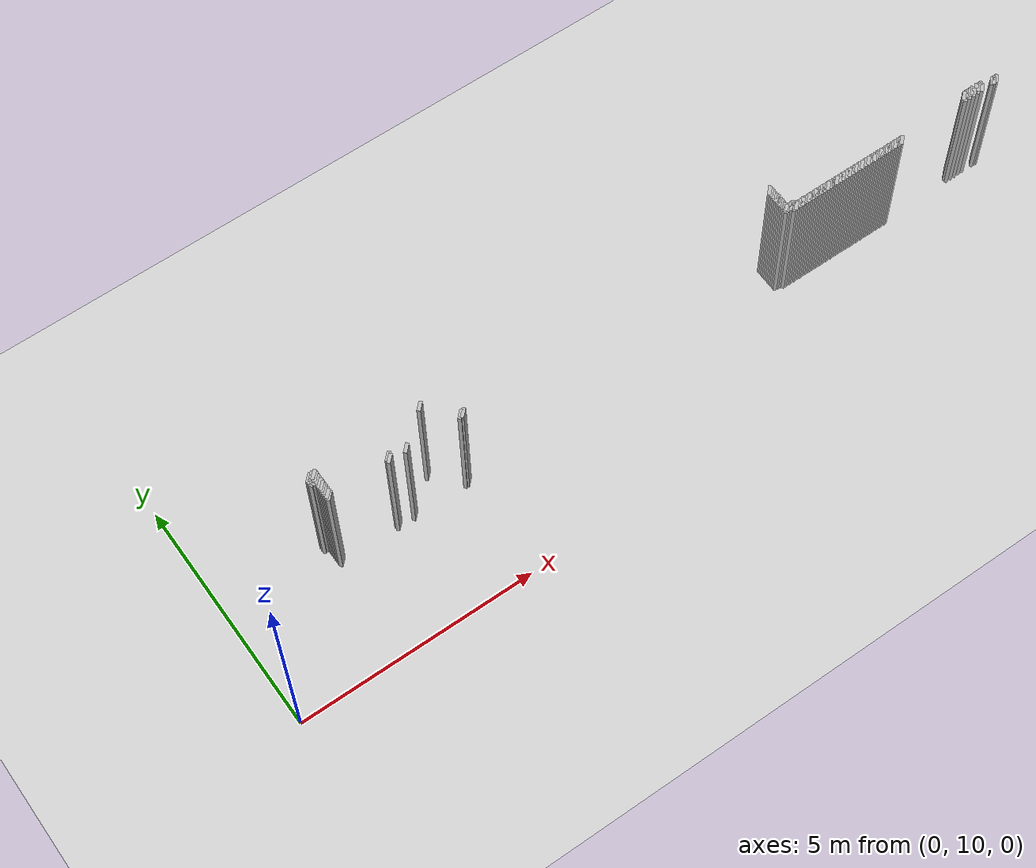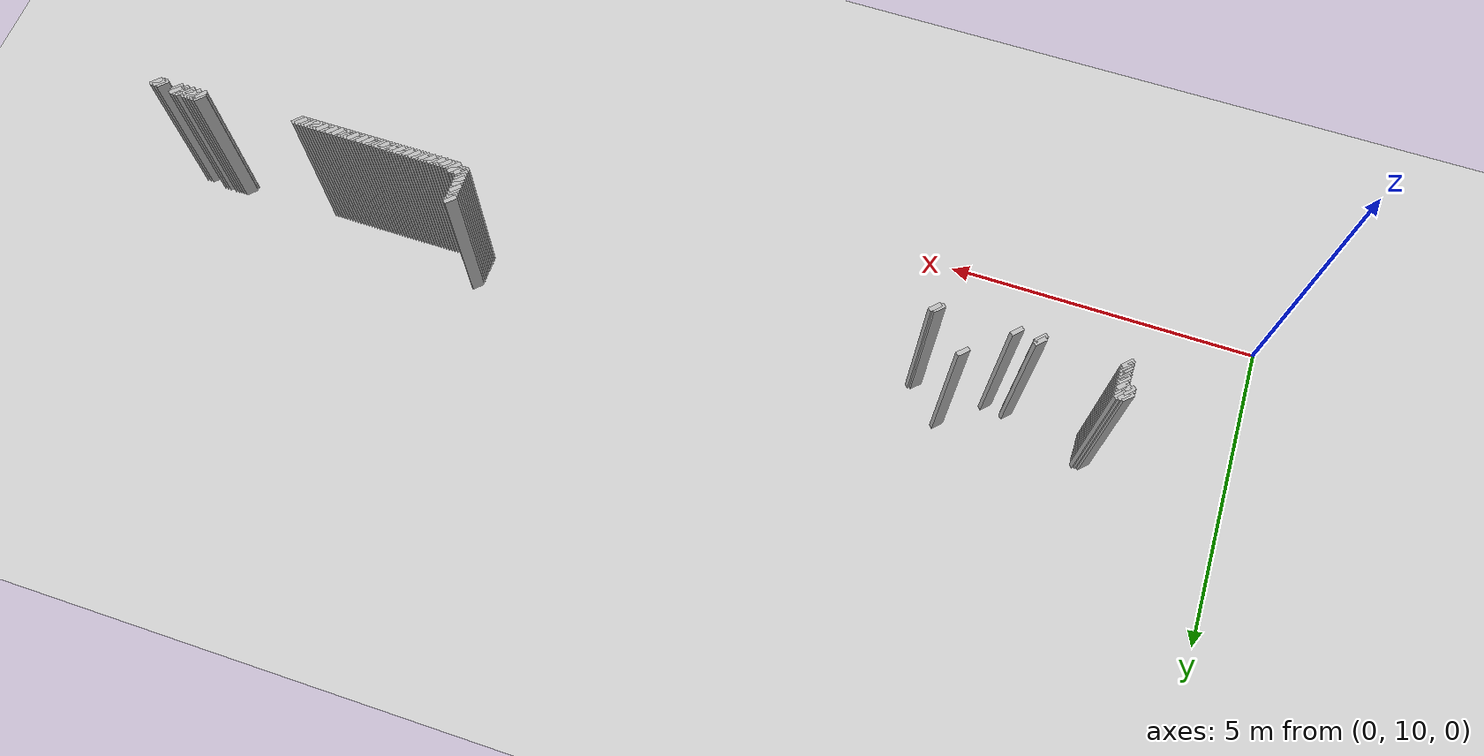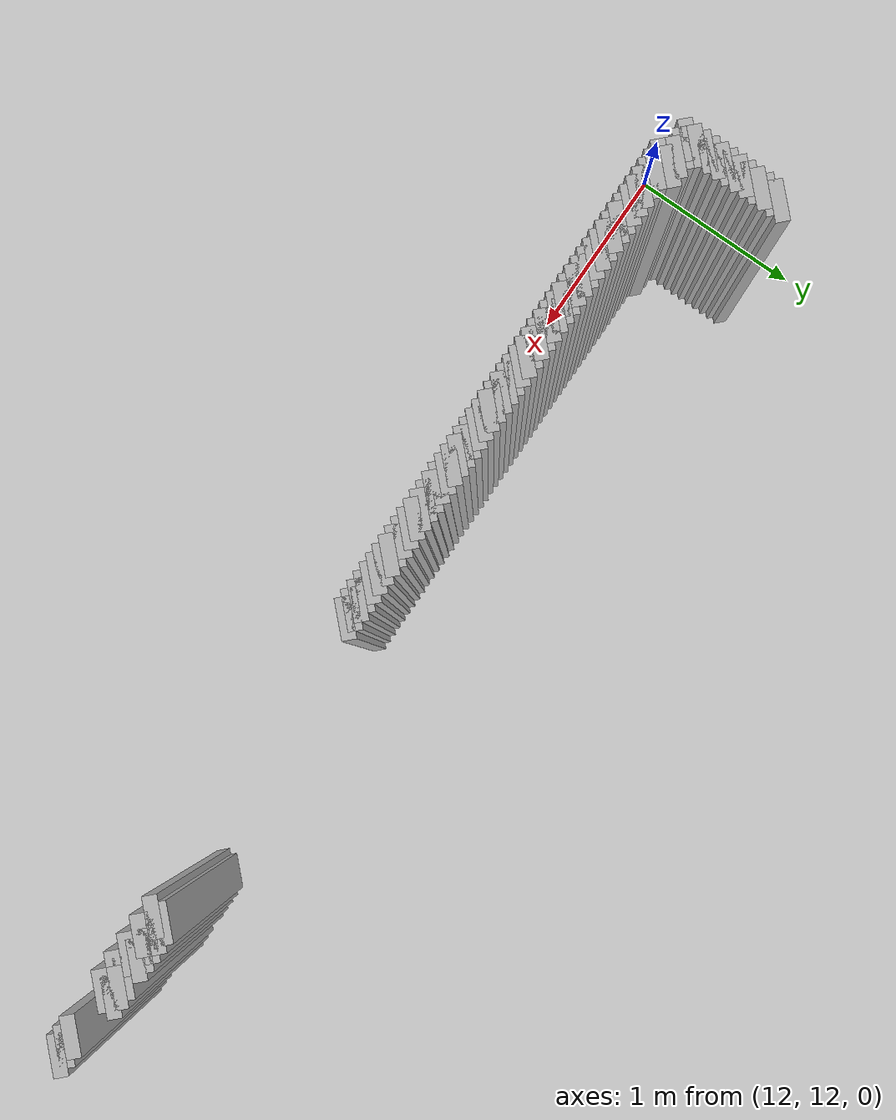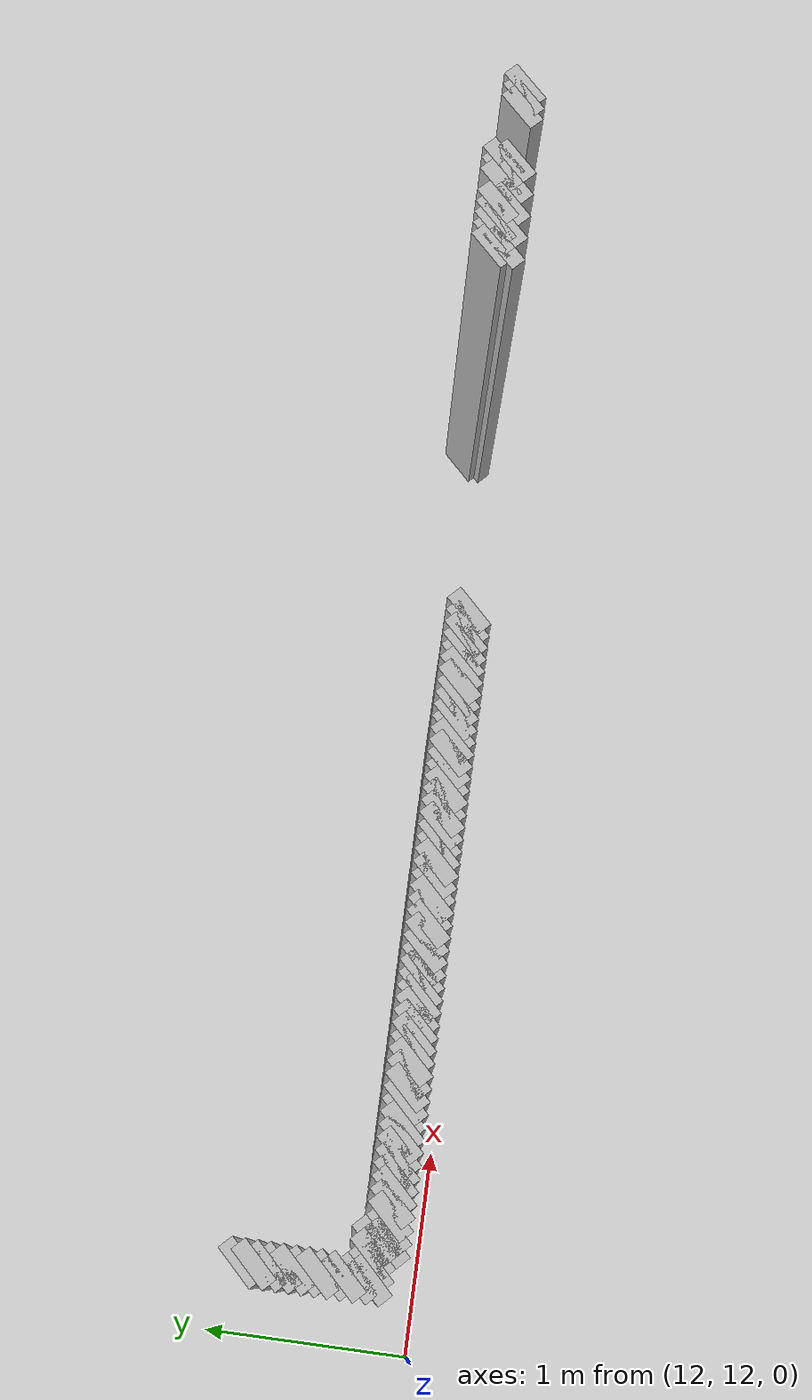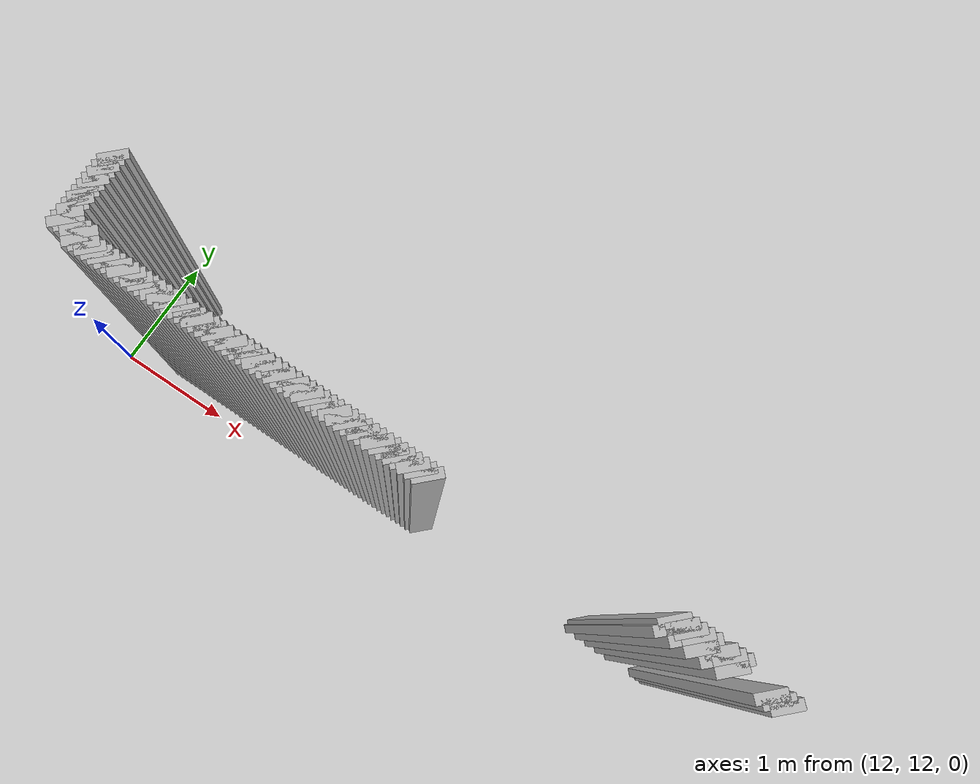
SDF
<sdf version="1.5">
 <world name="default">
  <include><uri>model://ground_plane</uri></include>
  <include><uri>model://sun</uri></include>
  <model name="grey_wall_953">
   <static>1</static>
   <link name="link">
    <pose>4.55 12.75  1.4 0 0 -0.7853981633974483</pose>
    <collision name="collision">
     <geometry><box><size>0.07071067811865576 .2  2.8</size></box></geometry>
    </collision>
    <visual name="visual">
     <cast_shadows>0</cast_shadows>
     <geometry><box><size>0.07071067811865576 .2  2.8</size></box></geometry>
    </visual>
   </link>
  </model>
  <model name="grey_wall_954">
   <static>1</static>
   <link name="link">
    <pose>12.350000000000001 12.75  1.4 0 0 -0.7853981633974483</pose>
    <collision name="collision">
     <geometry><box><size>0.07071067811865576 .2  2.8</size></box></geometry>
    </collision>
    <visual name="visual">
     <cast_shadows>0</cast_shadows>
     <geometry><box><size>0.07071067811865576 .2  2.8</size></box></geometry>
    </visual>
   </link>
  </model>
  <model name="grey_wall_955">
   <static>1</static>
   <link name="link">
    <pose>2.2 12.700000000000001  1.4 0 0 -0.7853981633974572</pose>
    <collision name="collision">
     <geometry><box><size>0.07071067811865513 .2  2.8</size></box></geometry>
    </collision>
    <visual name="visual">
     <cast_shadows>0</cast_shadows>
     <geometry><box><size>0.07071067811865513 .2  2.8</size></box></geometry>
    </visual>
   </link>
  </model>
  <model name="grey_wall_956">
   <static>1</static>
   <link name="link">
    <pose>2.25 12.700000000000001  1.4 0 0 -0.7853981633974572</pose>
    <collision name="collision">
     <geometry><box><size>0.07071067811865513 .2  2.8</size></box></geometry>
    </collision>
    <visual name="visual">
     <cast_shadows>0</cast_shadows>
     <geometry><box><size>0.07071067811865513 .2  2.8</size></box></geometry>
    </visual>
   </link>
  </model>
  <model name="grey_wall_957">
   <static>1</static>
   <link name="link">
    <pose>2.3000000000000003 12.700000000000001  1.4 0 0 -0.7853981633974572</pose>
    <collision name="collision">
     <geometry><box><size>0.07071067811865513 .2  2.8</size></box></geometry>
    </collision>
    <visual name="visual">
     <cast_shadows>0</cast_shadows>
     <geometry><box><size>0.07071067811865513 .2  2.8</size></box></geometry>
    </visual>
   </link>
  </model>
  <model name="grey_wall_958">
   <static>1</static>
   <link name="link">
    <pose>12.350000000000001 12.700000000000001  1.4 0 0 -0.7853981633974483</pose>
    <collision name="collision">
     <geometry><box><size>0.07071067811865576 .2  2.8</size></box></geometry>
    </collision>
    <visual name="visual">
     <cast_shadows>0</cast_shadows>
     <geometry><box><size>0.07071067811865576 .2  2.8</size></box></geometry>
    </visual>
   </link>
  </model>
  <model name="grey_wall_959">
   <static>1</static>
   <link name="link">
    <pose>2.2 12.65  1.4 0 0 -0.7853981633974572</pose>
    <collision name="collision">
     <geometry><box><size>0.07071067811865513 .2  2.8</size></box></geometry>
    </collision>
    <visual name="visual">
     <cast_shadows>0</cast_shadows>
     <geometry><box><size>0.07071067811865513 .2  2.8</size></box></geometry>
    </visual>
   </link>
  </model>
  <model name="grey_wall_960">
   <static>1</static>
   <link name="link">
    <pose>2.3000000000000003 12.65  1.4 0 0 -0.7853981633974572</pose>
    <collision name="collision">
     <geometry><box><size>0.07071067811865513 .2  2.8</size></box></geometry>
    </collision>
    <visual name="visual">
     <cast_shadows>0</cast_shadows>
     <geometry><box><size>0.07071067811865513 .2  2.8</size></box></geometry>
    </visual>
   </link>
  </model>
  <model name="grey_wall_961">
   <static>1</static>
   <link name="link">
    <pose>12.350000000000001 12.65  1.4 0 0 -0.7853981633974483</pose>
    <collision name="collision">
     <geometry><box><size>0.07071067811865576 .2  2.8</size></box></geometry>
    </collision>
    <visual name="visual">
     <cast_shadows>0</cast_shadows>
     <geometry><box><size>0.07071067811865576 .2  2.8</size></box></geometry>
    </visual>
   </link>
  </model>
  <model name="grey_wall_962">
   <static>1</static>
   <link name="link">
    <pose>2.2 12.600000000000001  1.4 0 0 -0.7853981633974572</pose>
    <collision name="collision">
     <geometry><box><size>0.07071067811865513 .2  2.8</size></box></geometry>
    </collision>
    <visual name="visual">
     <cast_shadows>0</cast_shadows>
     <geometry><box><size>0.07071067811865513 .2  2.8</size></box></geometry>
    </visual>
   </link>
  </model>
  <model name="grey_wall_963">
   <static>1</static>
   <link name="link">
    <pose>2.25 12.600000000000001  1.4 0 0 -0.7853981633974572</pose>
    <collision name="collision">
     <geometry><box><size>0.07071067811865513 .2  2.8</size></box></geometry>
    </collision>
    <visual name="visual">
     <cast_shadows>0</cast_shadows>
     <geometry><box><size>0.07071067811865513 .2  2.8</size></box></geometry>
    </visual>
   </link>
  </model>
  <model name="grey_wall_964">
   <static>1</static>
   <link name="link">
    <pose>2.3000000000000003 12.600000000000001  1.4 0 0 -0.7853981633974572</pose>
    <collision name="collision">
     <geometry><box><size>0.07071067811865513 .2  2.8</size></box></geometry>
    </collision>
    <visual name="visual">
     <cast_shadows>0</cast_shadows>
     <geometry><box><size>0.07071067811865513 .2  2.8</size></box></geometry>
    </visual>
   </link>
  </model>
  <model name="grey_wall_965">
   <static>1</static>
   <link name="link">
    <pose>12.350000000000001 12.600000000000001  1.4 0 0 -0.7853981633974483</pose>
    <collision name="collision">
     <geometry><box><size>0.07071067811865576 .2  2.8</size></box></geometry>
    </collision>
    <visual name="visual">
     <cast_shadows>0</cast_shadows>
     <geometry><box><size>0.07071067811865576 .2  2.8</size></box></geometry>
    </visual>
   </link>
  </model>
  <model name="grey_wall_966">
   <static>1</static>
   <link name="link">
    <pose>2.3000000000000003 12.55  1.4 0 0 -0.7853981633974572</pose>
    <collision name="collision">
     <geometry><box><size>0.07071067811865513 .2  2.8</size></box></geometry>
    </collision>
    <visual name="visual">
     <cast_shadows>0</cast_shadows>
     <geometry><box><size>0.07071067811865513 .2  2.8</size></box></geometry>
    </visual>
   </link>
  </model>
  <model name="grey_wall_967">
   <static>1</static>
   <link name="link">
    <pose>12.350000000000001 12.55  1.4 0 0 -0.7853981633974483</pose>
    <collision name="collision">
     <geometry><box><size>0.07071067811865576 .2  2.8</size></box></geometry>
    </collision>
    <visual name="visual">
     <cast_shadows>0</cast_shadows>
     <geometry><box><size>0.07071067811865576 .2  2.8</size></box></geometry>
    </visual>
   </link>
  </model>
  <model name="grey_wall_968">
   <static>1</static>
   <link name="link">
    <pose>2.3000000000000003 12.5  1.4 0 0 -0.7853981633974572</pose>
    <collision name="collision">
     <geometry><box><size>0.07071067811865513 .2  2.8</size></box></geometry>
    </collision>
    <visual name="visual">
     <cast_shadows>0</cast_shadows>
     <geometry><box><size>0.07071067811865513 .2  2.8</size></box></geometry>
    </visual>
   </link>
  </model>
  <model name="grey_wall_969">
   <static>1</static>
   <link name="link">
    <pose>12.350000000000001 12.5  1.4 0 0 -0.7853981633974483</pose>
    <collision name="collision">
     <geometry><box><size>0.07071067811865576 .2  2.8</size></box></geometry>
    </collision>
    <visual name="visual">
     <cast_shadows>0</cast_shadows>
     <geometry><box><size>0.07071067811865576 .2  2.8</size></box></geometry>
    </visual>
   </link>
  </model>
  <model name="grey_wall_970">
   <static>1</static>
   <link name="link">
    <pose>2.3000000000000003 12.450000000000001  1.4 0 0 -0.7853981633974572</pose>
    <collision name="collision">
     <geometry><box><size>0.07071067811865513 .2  2.8</size></box></geometry>
    </collision>
    <visual name="visual">
     <cast_shadows>0</cast_shadows>
     <geometry><box><size>0.07071067811865513 .2  2.8</size></box></geometry>
    </visual>
   </link>
  </model>
  <model name="grey_wall_971">
   <static>1</static>
   <link name="link">
    <pose>12.350000000000001 12.450000000000001  1.4 0 0 -0.7853981633974483</pose>
    <collision name="collision">
     <geometry><box><size>0.07071067811865576 .2  2.8</size></box></geometry>
    </collision>
    <visual name="visual">
     <cast_shadows>0</cast_shadows>
     <geometry><box><size>0.07071067811865576 .2  2.8</size></box></geometry>
    </visual>
   </link>
  </model>
  <model name="grey_wall_972">
   <static>1</static>
   <link name="link">
    <pose>2.3000000000000003 12.4  1.4 0 0 -0.7853981633974572</pose>
    <collision name="collision">
     <geometry><box><size>0.07071067811865513 .2  2.8</size></box></geometry>
    </collision>
    <visual name="visual">
     <cast_shadows>0</cast_shadows>
     <geometry><box><size>0.07071067811865513 .2  2.8</size></box></geometry>
    </visual>
   </link>
  </model>
  <model name="grey_wall_973">
   <static>1</static>
   <link name="link">
    <pose>12.350000000000001 12.4  1.4 0 0 -0.7853981633974483</pose>
    <collision name="collision">
     <geometry><box><size>0.07071067811865576 .2  2.8</size></box></geometry>
    </collision>
    <visual name="visual">
     <cast_shadows>0</cast_shadows>
     <geometry><box><size>0.07071067811865576 .2  2.8</size></box></geometry>
    </visual>
   </link>
  </model>
  <model name="grey_wall_974">
   <static>1</static>
   <link name="link">
    <pose>2.3000000000000003 12.350000000000001  1.4 0 0 -0.7853981633974572</pose>
    <collision name="collision">
     <geometry><box><size>0.07071067811865513 .2  2.8</size></box></geometry>
    </collision>
    <visual name="visual">
     <cast_shadows>0</cast_shadows>
     <geometry><box><size>0.07071067811865513 .2  2.8</size></box></geometry>
    </visual>
   </link>
  </model>
  <model name="grey_wall_975">
   <static>1</static>
   <link name="link">
    <pose>12.350000000000001 12.350000000000001  1.4 0 0 -0.7853981633974483</pose>
    <collision name="collision">
     <geometry><box><size>0.07071067811865576 .2  2.8</size></box></geometry>
    </collision>
    <visual name="visual">
     <cast_shadows>0</cast_shadows>
     <geometry><box><size>0.07071067811865576 .2  2.8</size></box></geometry>
    </visual>
   </link>
  </model>
  <model name="grey_wall_976">
   <static>1</static>
   <link name="link">
    <pose>2.3000000000000003 12.3  1.4 0 0 -0.7853981633974572</pose>
    <collision name="collision">
     <geometry><box><size>0.07071067811865513 .2  2.8</size></box></geometry>
    </collision>
    <visual name="visual">
     <cast_shadows>0</cast_shadows>
     <geometry><box><size>0.07071067811865513 .2  2.8</size></box></geometry>
    </visual>
   </link>
  </model>
  <model name="grey_wall_977">
   <static>1</static>
   <link name="link">
    <pose>12.350000000000001 12.3  1.4 0 0 -0.7853981633974483</pose>
    <collision name="collision">
     <geometry><box><size>0.07071067811865576 .2  2.8</size></box></geometry>
    </collision>
    <visual name="visual">
     <cast_shadows>0</cast_shadows>
     <geometry><box><size>0.07071067811865576 .2  2.8</size></box></geometry>
    </visual>
   </link>
  </model>
  <model name="grey_wall_978">
   <static>1</static>
   <link name="link">
    <pose>16.650000000000002 12.3  1.4 0 0 -0.7853981633974838</pose>
    <collision name="collision">
     <geometry><box><size>0.07071067811865325 .2  2.8</size></box></geometry>
    </collision>
    <visual name="visual">
     <cast_shadows>0</cast_shadows>
     <geometry><box><size>0.07071067811865325 .2  2.8</size></box></geometry>
    </visual>
   </link>
  </model>
  <model name="grey_wall_979">
   <static>1</static>
   <link name="link">
    <pose>16.7 12.3  1.4 0 0 -0.7853981633974838</pose>
    <collision name="collision">
     <geometry><box><size>0.07071067811865325 .2  2.8</size></box></geometry>
    </collision>
    <visual name="visual">
     <cast_shadows>0</cast_shadows>
     <geometry><box><size>0.07071067811865325 .2  2.8</size></box></geometry>
    </visual>
   </link>
  </model>
  <model name="grey_wall_980">
   <static>1</static>
   <link name="link">
    <pose>16.75 12.3  1.4 0 0 -0.7853981633974838</pose>
    <collision name="collision">
     <geometry><box><size>0.07071067811865325 .2  2.8</size></box></geometry>
    </collision>
    <visual name="visual">
     <cast_shadows>0</cast_shadows>
     <geometry><box><size>0.07071067811865325 .2  2.8</size></box></geometry>
    </visual>
   </link>
  </model>
  <model name="grey_wall_981">
   <static>1</static>
   <link name="link">
    <pose>16.8 12.3  1.4 0 0 -0.7853981633974838</pose>
    <collision name="collision">
     <geometry><box><size>0.07071067811865325 .2  2.8</size></box></geometry>
    </collision>
    <visual name="visual">
     <cast_shadows>0</cast_shadows>
     <geometry><box><size>0.07071067811865325 .2  2.8</size></box></geometry>
    </visual>
   </link>
  </model>
  <model name="grey_wall_982">
   <static>1</static>
   <link name="link">
    <pose>16.85 12.3  1.4 0 0 -0.7853981633974838</pose>
    <collision name="collision">
     <geometry><box><size>0.07071067811865325 .2  2.8</size></box></geometry>
    </collision>
    <visual name="visual">
     <cast_shadows>0</cast_shadows>
     <geometry><box><size>0.07071067811865325 .2  2.8</size></box></geometry>
    </visual>
   </link>
  </model>
  <model name="grey_wall_983">
   <static>1</static>
   <link name="link">
    <pose>16.95 12.3  1.4 0 0 -0.7853981633974838</pose>
    <collision name="collision">
     <geometry><box><size>0.07071067811865325 .2  2.8</size></box></geometry>
    </collision>
    <visual name="visual">
     <cast_shadows>0</cast_shadows>
     <geometry><box><size>0.07071067811865325 .2  2.8</size></box></geometry>
    </visual>
   </link>
  </model>
  <model name="grey_wall_984">
   <static>1</static>
   <link name="link">
    <pose>17.0 12.3  1.4 0 0 -0.7853981633974838</pose>
    <collision name="collision">
     <geometry><box><size>0.07071067811865325 .2  2.8</size></box></geometry>
    </collision>
    <visual name="visual">
     <cast_shadows>0</cast_shadows>
     <geometry><box><size>0.07071067811865325 .2  2.8</size></box></geometry>
    </visual>
   </link>
  </model>
  <model name="grey_wall_985">
   <static>1</static>
   <link name="link">
    <pose>17.05 12.3  1.4 0 0 -0.7853981633974838</pose>
    <collision name="collision">
     <geometry><box><size>0.07071067811865325 .2  2.8</size></box></geometry>
    </collision>
    <visual name="visual">
     <cast_shadows>0</cast_shadows>
     <geometry><box><size>0.07071067811865325 .2  2.8</size></box></geometry>
    </visual>
   </link>
  </model>
  <model name="grey_wall_986">
   <static>1</static>
   <link name="link">
    <pose>2.3000000000000003 12.25  1.4 0 0 -0.7853981633974572</pose>
    <collision name="collision">
     <geometry><box><size>0.07071067811865513 .2  2.8</size></box></geometry>
    </collision>
    <visual name="visual">
     <cast_shadows>0</cast_shadows>
     <geometry><box><size>0.07071067811865513 .2  2.8</size></box></geometry>
    </visual>
   </link>
  </model>
  <model name="grey_wall_987">
   <static>1</static>
   <link name="link">
    <pose>3.5500000000000003 12.25  1.4 0 0 -0.7853981633974572</pose>
    <collision name="collision">
     <geometry><box><size>0.07071067811865513 .2  2.8</size></box></geometry>
    </collision>
    <visual name="visual">
     <cast_shadows>0</cast_shadows>
     <geometry><box><size>0.07071067811865513 .2  2.8</size></box></geometry>
    </visual>
   </link>
  </model>
  <model name="grey_wall_988">
   <static>1</static>
   <link name="link">
    <pose>12.350000000000001 12.25  1.4 0 0 -0.7853981633974483</pose>
    <collision name="collision">
     <geometry><box><size>0.07071067811865576 .2  2.8</size></box></geometry>
    </collision>
    <visual name="visual">
     <cast_shadows>0</cast_shadows>
     <geometry><box><size>0.07071067811865576 .2  2.8</size></box></geometry>
    </visual>
   </link>
  </model>
  <model name="grey_wall_989">
   <static>1</static>
   <link name="link">
    <pose>12.4 12.25  1.4 0 0 -0.7853981633974483</pose>
    <collision name="collision">
     <geometry><box><size>0.07071067811865576 .2  2.8</size></box></geometry>
    </collision>
    <visual name="visual">
     <cast_shadows>0</cast_shadows>
     <geometry><box><size>0.07071067811865576 .2  2.8</size></box></geometry>
    </visual>
   </link>
  </model>
  <model name="grey_wall_990">
   <static>1</static>
   <link name="link">
    <pose>12.450000000000001 12.25  1.4 0 0 -0.7853981633974483</pose>
    <collision name="collision">
     <geometry><box><size>0.07071067811865576 .2  2.8</size></box></geometry>
    </collision>
    <visual name="visual">
     <cast_shadows>0</cast_shadows>
     <geometry><box><size>0.07071067811865576 .2  2.8</size></box></geometry>
    </visual>
   </link>
  </model>
  <model name="grey_wall_991">
   <static>1</static>
   <link name="link">
    <pose>12.5 12.25  1.4 0 0 -0.7853981633974483</pose>
    <collision name="collision">
     <geometry><box><size>0.07071067811865576 .2  2.8</size></box></geometry>
    </collision>
    <visual name="visual">
     <cast_shadows>0</cast_shadows>
     <geometry><box><size>0.07071067811865576 .2  2.8</size></box></geometry>
    </visual>
   </link>
  </model>
  <model name="grey_wall_992">
   <static>1</static>
   <link name="link">
    <pose>16.650000000000002 12.25  1.4 0 0 -0.7853981633974838</pose>
    <collision name="collision">
     <geometry><box><size>0.07071067811865325 .2  2.8</size></box></geometry>
    </collision>
    <visual name="visual">
     <cast_shadows>0</cast_shadows>
     <geometry><box><size>0.07071067811865325 .2  2.8</size></box></geometry>
    </visual>
   </link>
  </model>
  <model name="grey_wall_993">
   <static>1</static>
   <link name="link">
    <pose>16.75 12.25  1.4 0 0 -0.7853981633974838</pose>
    <collision name="collision">
     <geometry><box><size>0.07071067811865325 .2  2.8</size></box></geometry>
    </collision>
    <visual name="visual">
     <cast_shadows>0</cast_shadows>
     <geometry><box><size>0.07071067811865325 .2  2.8</size></box></geometry>
    </visual>
   </link>
  </model>
  <model name="grey_wall_994">
   <static>1</static>
   <link name="link">
    <pose>16.85 12.25  1.4 0 0 -0.7853981633974838</pose>
    <collision name="collision">
     <geometry><box><size>0.07071067811865325 .2  2.8</size></box></geometry>
    </collision>
    <visual name="visual">
     <cast_shadows>0</cast_shadows>
     <geometry><box><size>0.07071067811865325 .2  2.8</size></box></geometry>
    </visual>
   </link>
  </model>
  <model name="grey_wall_995">
   <static>1</static>
   <link name="link">
    <pose>16.95 12.25  1.4 0 0 -0.7853981633974838</pose>
    <collision name="collision">
     <geometry><box><size>0.07071067811865325 .2  2.8</size></box></geometry>
    </collision>
    <visual name="visual">
     <cast_shadows>0</cast_shadows>
     <geometry><box><size>0.07071067811865325 .2  2.8</size></box></geometry>
    </visual>
   </link>
  </model>
  <model name="grey_wall_996">
   <static>1</static>
   <link name="link">
    <pose>17.05 12.25  1.4 0 0 -0.7853981633974838</pose>
    <collision name="collision">
     <geometry><box><size>0.07071067811865325 .2  2.8</size></box></geometry>
    </collision>
    <visual name="visual">
     <cast_shadows>0</cast_shadows>
     <geometry><box><size>0.07071067811865325 .2  2.8</size></box></geometry>
    </visual>
   </link>
  </model>
  <model name="grey_wall_997">
   <static>1</static>
   <link name="link">
    <pose>17.3 12.25  1.4 0 0 -0.7853981633974838</pose>
    <collision name="collision">
     <geometry><box><size>0.07071067811865325 .2  2.8</size></box></geometry>
    </collision>
    <visual name="visual">
     <cast_shadows>0</cast_shadows>
     <geometry><box><size>0.07071067811865325 .2  2.8</size></box></geometry>
    </visual>
   </link>
  </model>
  <model name="grey_wall_998">
   <static>1</static>
   <link name="link">
    <pose>17.35 12.25  1.4 0 0 -0.7853981633974838</pose>
    <collision name="collision">
     <geometry><box><size>0.07071067811865325 .2  2.8</size></box></geometry>
    </collision>
    <visual name="visual">
     <cast_shadows>0</cast_shadows>
     <geometry><box><size>0.07071067811865325 .2  2.8</size></box></geometry>
    </visual>
   </link>
  </model>
  <model name="grey_wall_999">
   <static>1</static>
   <link name="link">
    <pose>17.400000000000002 12.25  1.4 0 0 -0.7853981633974838</pose>
    <collision name="collision">
     <geometry><box><size>0.07071067811865325 .2  2.8</size></box></geometry>
    </collision>
    <visual name="visual">
     <cast_shadows>0</cast_shadows>
     <geometry><box><size>0.07071067811865325 .2  2.8</size></box></geometry>
    </visual>
   </link>
  </model>
  <model name="grey_wall_1000">
   <static>1</static>
   <link name="link">
    <pose>2.3000000000000003 12.200000000000001  1.4 0 0 -0.7853981633974572</pose>
    <collision name="collision">
     <geometry><box><size>0.07071067811865513 .2  2.8</size></box></geometry>
    </collision>
    <visual name="visual">
     <cast_shadows>0</cast_shadows>
     <geometry><box><size>0.07071067811865513 .2  2.8</size></box></geometry>
    </visual>
   </link>
  </model>
  <model name="grey_wall_1001">
   <static>1</static>
   <link name="link">
    <pose>3.5500000000000003 12.200000000000001  1.4 0 0 -0.7853981633974572</pose>
    <collision name="collision">
     <geometry><box><size>0.07071067811865513 .2  2.8</size></box></geometry>
    </collision>
    <visual name="visual">
     <cast_shadows>0</cast_shadows>
     <geometry><box><size>0.07071067811865513 .2  2.8</size></box></geometry>
    </visual>
   </link>
  </model>
  <model name="grey_wall_1002">
   <static>1</static>
   <link name="link">
    <pose>3.9000000000000004 12.200000000000001  1.4 0 0 -0.7853981633974572</pose>
    <collision name="collision">
     <geometry><box><size>0.07071067811865513 .2  2.8</size></box></geometry>
    </collision>
    <visual name="visual">
     <cast_shadows>0</cast_shadows>
     <geometry><box><size>0.07071067811865513 .2  2.8</size></box></geometry>
    </visual>
   </link>
  </model>
  <model name="grey_wall_1003">
   <static>1</static>
   <link name="link">
    <pose>5.050000000000001 12.200000000000001  1.4 0 0 -0.7853981633974483</pose>
    <collision name="collision">
     <geometry><box><size>0.07071067811865576 .2  2.8</size></box></geometry>
    </collision>
    <visual name="visual">
     <cast_shadows>0</cast_shadows>
     <geometry><box><size>0.07071067811865576 .2  2.8</size></box></geometry>
    </visual>
   </link>
  </model>
  <model name="grey_wall_1004">
   <static>1</static>
   <link name="link">
    <pose>5.1000000000000005 12.200000000000001  1.4 0 0 -0.7853981633974483</pose>
    <collision name="collision">
     <geometry><box><size>0.07071067811865576 .2  2.8</size></box></geometry>
    </collision>
    <visual name="visual">
     <cast_shadows>0</cast_shadows>
     <geometry><box><size>0.07071067811865576 .2  2.8</size></box></geometry>
    </visual>
   </link>
  </model>
  <model name="grey_wall_1005">
   <static>1</static>
   <link name="link">
    <pose>12.5 12.200000000000001  1.4 0 0 -0.7853981633974483</pose>
    <collision name="collision">
     <geometry><box><size>0.07071067811865576 .2  2.8</size></box></geometry>
    </collision>
    <visual name="visual">
     <cast_shadows>0</cast_shadows>
     <geometry><box><size>0.07071067811865576 .2  2.8</size></box></geometry>
    </visual>
   </link>
  </model>
  <model name="grey_wall_1006">
   <static>1</static>
   <link name="link">
    <pose>12.55 12.200000000000001  1.4 0 0 -0.7853981633974483</pose>
    <collision name="collision">
     <geometry><box><size>0.07071067811865576 .2  2.8</size></box></geometry>
    </collision>
    <visual name="visual">
     <cast_shadows>0</cast_shadows>
     <geometry><box><size>0.07071067811865576 .2  2.8</size></box></geometry>
    </visual>
   </link>
  </model>
  <model name="grey_wall_1007">
   <static>1</static>
   <link name="link">
    <pose>12.600000000000001 12.200000000000001  1.4 0 0 -0.7853981633974483</pose>
    <collision name="collision">
     <geometry><box><size>0.07071067811865576 .2  2.8</size></box></geometry>
    </collision>
    <visual name="visual">
     <cast_shadows>0</cast_shadows>
     <geometry><box><size>0.07071067811865576 .2  2.8</size></box></geometry>
    </visual>
   </link>
  </model>
  <model name="grey_wall_1008">
   <static>1</static>
   <link name="link">
    <pose>12.65 12.200000000000001  1.4 0 0 -0.7853981633974483</pose>
    <collision name="collision">
     <geometry><box><size>0.07071067811865576 .2  2.8</size></box></geometry>
    </collision>
    <visual name="visual">
     <cast_shadows>0</cast_shadows>
     <geometry><box><size>0.07071067811865576 .2  2.8</size></box></geometry>
    </visual>
   </link>
  </model>
  <model name="grey_wall_1009">
   <static>1</static>
   <link name="link">
    <pose>12.700000000000001 12.200000000000001  1.4 0 0 -0.7853981633974483</pose>
    <collision name="collision">
     <geometry><box><size>0.07071067811865576 .2  2.8</size></box></geometry>
    </collision>
    <visual name="visual">
     <cast_shadows>0</cast_shadows>
     <geometry><box><size>0.07071067811865576 .2  2.8</size></box></geometry>
    </visual>
   </link>
  </model>
  <model name="grey_wall_1010">
   <static>1</static>
   <link name="link">
    <pose>12.75 12.200000000000001  1.4 0 0 -0.7853981633974483</pose>
    <collision name="collision">
     <geometry><box><size>0.07071067811865576 .2  2.8</size></box></geometry>
    </collision>
    <visual name="visual">
     <cast_shadows>0</cast_shadows>
     <geometry><box><size>0.07071067811865576 .2  2.8</size></box></geometry>
    </visual>
   </link>
  </model>
  <model name="grey_wall_1011">
   <static>1</static>
   <link name="link">
    <pose>12.8 12.200000000000001  1.4 0 0 -0.7853981633974483</pose>
    <collision name="collision">
     <geometry><box><size>0.07071067811865576 .2  2.8</size></box></geometry>
    </collision>
    <visual name="visual">
     <cast_shadows>0</cast_shadows>
     <geometry><box><size>0.07071067811865576 .2  2.8</size></box></geometry>
    </visual>
   </link>
  </model>
  <model name="grey_wall_1012">
   <static>1</static>
   <link name="link">
    <pose>12.850000000000001 12.200000000000001  1.4 0 0 -0.7853981633974483</pose>
    <collision name="collision">
     <geometry><box><size>0.07071067811865576 .2  2.8</size></box></geometry>
    </collision>
    <visual name="visual">
     <cast_shadows>0</cast_shadows>
     <geometry><box><size>0.07071067811865576 .2  2.8</size></box></geometry>
    </visual>
   </link>
  </model>
  <model name="grey_wall_1013">
   <static>1</static>
   <link name="link">
    <pose>12.9 12.200000000000001  1.4 0 0 -0.7853981633974483</pose>
    <collision name="collision">
     <geometry><box><size>0.07071067811865576 .2  2.8</size></box></geometry>
    </collision>
    <visual name="visual">
     <cast_shadows>0</cast_shadows>
     <geometry><box><size>0.07071067811865576 .2  2.8</size></box></geometry>
    </visual>
   </link>
  </model>
  <model name="grey_wall_1014">
   <static>1</static>
   <link name="link">
    <pose>12.950000000000001 12.200000000000001  1.4 0 0 -0.7853981633974483</pose>
    <collision name="collision">
     <geometry><box><size>0.07071067811865576 .2  2.8</size></box></geometry>
    </collision>
    <visual name="visual">
     <cast_shadows>0</cast_shadows>
     <geometry><box><size>0.07071067811865576 .2  2.8</size></box></geometry>
    </visual>
   </link>
  </model>
  <model name="grey_wall_1015">
   <static>1</static>
   <link name="link">
    <pose>13.0 12.200000000000001  1.4 0 0 -0.7853981633974483</pose>
    <collision name="collision">
     <geometry><box><size>0.07071067811865576 .2  2.8</size></box></geometry>
    </collision>
    <visual name="visual">
     <cast_shadows>0</cast_shadows>
     <geometry><box><size>0.07071067811865576 .2  2.8</size></box></geometry>
    </visual>
   </link>
  </model>
  <model name="grey_wall_1016">
   <static>1</static>
   <link name="link">
    <pose>13.05 12.200000000000001  1.4 0 0 -0.7853981633974483</pose>
    <collision name="collision">
     <geometry><box><size>0.07071067811865576 .2  2.8</size></box></geometry>
    </collision>
    <visual name="visual">
     <cast_shadows>0</cast_shadows>
     <geometry><box><size>0.07071067811865576 .2  2.8</size></box></geometry>
    </visual>
   </link>
  </model>
  <model name="grey_wall_1017">
   <static>1</static>
   <link name="link">
    <pose>13.100000000000001 12.200000000000001  1.4 0 0 -0.7853981633974483</pose>
    <collision name="collision">
     <geometry><box><size>0.07071067811865576 .2  2.8</size></box></geometry>
    </collision>
    <visual name="visual">
     <cast_shadows>0</cast_shadows>
     <geometry><box><size>0.07071067811865576 .2  2.8</size></box></geometry>
    </visual>
   </link>
  </model>
  <model name="grey_wall_1018">
   <static>1</static>
   <link name="link">
    <pose>13.15 12.200000000000001  1.4 0 0 -0.7853981633974483</pose>
    <collision name="collision">
     <geometry><box><size>0.07071067811865576 .2  2.8</size></box></geometry>
    </collision>
    <visual name="visual">
     <cast_shadows>0</cast_shadows>
     <geometry><box><size>0.07071067811865576 .2  2.8</size></box></geometry>
    </visual>
   </link>
  </model>
  <model name="grey_wall_1019">
   <static>1</static>
   <link name="link">
    <pose>13.200000000000001 12.200000000000001  1.4 0 0 -0.7853981633974483</pose>
    <collision name="collision">
     <geometry><box><size>0.07071067811865576 .2  2.8</size></box></geometry>
    </collision>
    <visual name="visual">
     <cast_shadows>0</cast_shadows>
     <geometry><box><size>0.07071067811865576 .2  2.8</size></box></geometry>
    </visual>
   </link>
  </model>
  <model name="grey_wall_1020">
   <static>1</static>
   <link name="link">
    <pose>13.25 12.200000000000001  1.4 0 0 -0.7853981633974483</pose>
    <collision name="collision">
     <geometry><box><size>0.07071067811865576 .2  2.8</size></box></geometry>
    </collision>
    <visual name="visual">
     <cast_shadows>0</cast_shadows>
     <geometry><box><size>0.07071067811865576 .2  2.8</size></box></geometry>
    </visual>
   </link>
  </model>
  <model name="grey_wall_1021">
   <static>1</static>
   <link name="link">
    <pose>13.3 12.200000000000001  1.4 0 0 -0.7853981633974483</pose>
    <collision name="collision">
     <geometry><box><size>0.07071067811865576 .2  2.8</size></box></geometry>
    </collision>
    <visual name="visual">
     <cast_shadows>0</cast_shadows>
     <geometry><box><size>0.07071067811865576 .2  2.8</size></box></geometry>
    </visual>
   </link>
  </model>
  <model name="grey_wall_1022">
   <static>1</static>
   <link name="link">
    <pose>13.350000000000001 12.200000000000001  1.4 0 0 -0.7853981633974483</pose>
    <collision name="collision">
     <geometry><box><size>0.07071067811865576 .2  2.8</size></box></geometry>
    </collision>
    <visual name="visual">
     <cast_shadows>0</cast_shadows>
     <geometry><box><size>0.07071067811865576 .2  2.8</size></box></geometry>
    </visual>
   </link>
  </model>
  <model name="grey_wall_1023">
   <static>1</static>
   <link name="link">
    <pose>13.4 12.200000000000001  1.4 0 0 -0.7853981633974483</pose>
    <collision name="collision">
     <geometry><box><size>0.07071067811865576 .2  2.8</size></box></geometry>
    </collision>
    <visual name="visual">
     <cast_shadows>0</cast_shadows>
     <geometry><box><size>0.07071067811865576 .2  2.8</size></box></geometry>
    </visual>
   </link>
  </model>
  <model name="grey_wall_1024">
   <static>1</static>
   <link name="link">
    <pose>13.450000000000001 12.200000000000001  1.4 0 0 -0.7853981633974483</pose>
    <collision name="collision">
     <geometry><box><size>0.07071067811865576 .2  2.8</size></box></geometry>
    </collision>
    <visual name="visual">
     <cast_shadows>0</cast_shadows>
     <geometry><box><size>0.07071067811865576 .2  2.8</size></box></geometry>
    </visual>
   </link>
  </model>
  <model name="grey_wall_1025">
   <static>1</static>
   <link name="link">
    <pose>13.5 12.200000000000001  1.4 0 0 -0.7853981633974483</pose>
    <collision name="collision">
     <geometry><box><size>0.07071067811865576 .2  2.8</size></box></geometry>
    </collision>
    <visual name="visual">
     <cast_shadows>0</cast_shadows>
     <geometry><box><size>0.07071067811865576 .2  2.8</size></box></geometry>
    </visual>
   </link>
  </model>
  <model name="grey_wall_1026">
   <static>1</static>
   <link name="link">
    <pose>13.55 12.200000000000001  1.4 0 0 -0.7853981633974483</pose>
    <collision name="collision">
     <geometry><box><size>0.07071067811865576 .2  2.8</size></box></geometry>
    </collision>
    <visual name="visual">
     <cast_shadows>0</cast_shadows>
     <geometry><box><size>0.07071067811865576 .2  2.8</size></box></geometry>
    </visual>
   </link>
  </model>
  <model name="grey_wall_1027">
   <static>1</static>
   <link name="link">
    <pose>13.600000000000001 12.200000000000001  1.4 0 0 -0.7853981633974483</pose>
    <collision name="collision">
     <geometry><box><size>0.07071067811865576 .2  2.8</size></box></geometry>
    </collision>
    <visual name="visual">
     <cast_shadows>0</cast_shadows>
     <geometry><box><size>0.07071067811865576 .2  2.8</size></box></geometry>
    </visual>
   </link>
  </model>
  <model name="grey_wall_1028">
   <static>1</static>
   <link name="link">
    <pose>13.65 12.200000000000001  1.4 0 0 -0.7853981633974483</pose>
    <collision name="collision">
     <geometry><box><size>0.07071067811865576 .2  2.8</size></box></geometry>
    </collision>
    <visual name="visual">
     <cast_shadows>0</cast_shadows>
     <geometry><box><size>0.07071067811865576 .2  2.8</size></box></geometry>
    </visual>
   </link>
  </model>
  <model name="grey_wall_1029">
   <static>1</static>
   <link name="link">
    <pose>13.700000000000001 12.200000000000001  1.4 0 0 -0.7853981633974483</pose>
    <collision name="collision">
     <geometry><box><size>0.07071067811865576 .2  2.8</size></box></geometry>
    </collision>
    <visual name="visual">
     <cast_shadows>0</cast_shadows>
     <geometry><box><size>0.07071067811865576 .2  2.8</size></box></geometry>
    </visual>
   </link>
  </model>
  <model name="grey_wall_1030">
   <static>1</static>
   <link name="link">
    <pose>13.75 12.200000000000001  1.4 0 0 -0.7853981633974483</pose>
    <collision name="collision">
     <geometry><box><size>0.07071067811865576 .2  2.8</size></box></geometry>
    </collision>
    <visual name="visual">
     <cast_shadows>0</cast_shadows>
     <geometry><box><size>0.07071067811865576 .2  2.8</size></box></geometry>
    </visual>
   </link>
  </model>
  <model name="grey_wall_1031">
   <static>1</static>
   <link name="link">
    <pose>13.8 12.200000000000001  1.4 0 0 -0.7853981633974483</pose>
    <collision name="collision">
     <geometry><box><size>0.07071067811865576 .2  2.8</size></box></geometry>
    </collision>
    <visual name="visual">
     <cast_shadows>0</cast_shadows>
     <geometry><box><size>0.07071067811865576 .2  2.8</size></box></geometry>
    </visual>
   </link>
  </model>
  <model name="grey_wall_1032">
   <static>1</static>
   <link name="link">
    <pose>13.850000000000001 12.200000000000001  1.4 0 0 -0.7853981633974483</pose>
    <collision name="collision">
     <geometry><box><size>0.07071067811865576 .2  2.8</size></box></geometry>
    </collision>
    <visual name="visual">
     <cast_shadows>0</cast_shadows>
     <geometry><box><size>0.07071067811865576 .2  2.8</size></box></geometry>
    </visual>
   </link>
  </model>
  <model name="grey_wall_1033">
   <static>1</static>
   <link name="link">
    <pose>13.9 12.200000000000001  1.4 0 0 -0.7853981633974483</pose>
    <collision name="collision">
     <geometry><box><size>0.07071067811865576 .2  2.8</size></box></geometry>
    </collision>
    <visual name="visual">
     <cast_shadows>0</cast_shadows>
     <geometry><box><size>0.07071067811865576 .2  2.8</size></box></geometry>
    </visual>
   </link>
  </model>
  <model name="grey_wall_1034">
   <static>1</static>
   <link name="link">
    <pose>13.950000000000001 12.200000000000001  1.4 0 0 -0.7853981633974483</pose>
    <collision name="collision">
     <geometry><box><size>0.07071067811865576 .2  2.8</size></box></geometry>
    </collision>
    <visual name="visual">
     <cast_shadows>0</cast_shadows>
     <geometry><box><size>0.07071067811865576 .2  2.8</size></box></geometry>
    </visual>
   </link>
  </model>
  <model name="grey_wall_1035">
   <static>1</static>
   <link name="link">
    <pose>14.0 12.200000000000001  1.4 0 0 -0.7853981633974483</pose>
    <collision name="collision">
     <geometry><box><size>0.07071067811865576 .2  2.8</size></box></geometry>
    </collision>
    <visual name="visual">
     <cast_shadows>0</cast_shadows>
     <geometry><box><size>0.07071067811865576 .2  2.8</size></box></geometry>
    </visual>
   </link>
  </model>
  <model name="grey_wall_1036">
   <static>1</static>
   <link name="link">
    <pose>14.05 12.200000000000001  1.4 0 0 -0.7853981633974483</pose>
    <collision name="collision">
     <geometry><box><size>0.07071067811865576 .2  2.8</size></box></geometry>
    </collision>
    <visual name="visual">
     <cast_shadows>0</cast_shadows>
     <geometry><box><size>0.07071067811865576 .2  2.8</size></box></geometry>
    </visual>
   </link>
  </model>
  <model name="grey_wall_1037">
   <static>1</static>
   <link name="link">
    <pose>14.100000000000001 12.200000000000001  1.4 0 0 -0.7853981633974483</pose>
    <collision name="collision">
     <geometry><box><size>0.07071067811865576 .2  2.8</size></box></geometry>
    </collision>
    <visual name="visual">
     <cast_shadows>0</cast_shadows>
     <geometry><box><size>0.07071067811865576 .2  2.8</size></box></geometry>
    </visual>
   </link>
  </model>
  <model name="grey_wall_1038">
   <static>1</static>
   <link name="link">
    <pose>14.15 12.200000000000001  1.4 0 0 -0.7853981633974483</pose>
    <collision name="collision">
     <geometry><box><size>0.07071067811865576 .2  2.8</size></box></geometry>
    </collision>
    <visual name="visual">
     <cast_shadows>0</cast_shadows>
     <geometry><box><size>0.07071067811865576 .2  2.8</size></box></geometry>
    </visual>
   </link>
  </model>
  <model name="grey_wall_1039">
   <static>1</static>
   <link name="link">
    <pose>14.200000000000001 12.200000000000001  1.4 0 0 -0.7853981633974483</pose>
    <collision name="collision">
     <geometry><box><size>0.07071067811865576 .2  2.8</size></box></geometry>
    </collision>
    <visual name="visual">
     <cast_shadows>0</cast_shadows>
     <geometry><box><size>0.07071067811865576 .2  2.8</size></box></geometry>
    </visual>
   </link>
  </model>
  <model name="grey_wall_1040">
   <static>1</static>
   <link name="link">
    <pose>14.25 12.200000000000001  1.4 0 0 -0.7853981633974483</pose>
    <collision name="collision">
     <geometry><box><size>0.07071067811865576 .2  2.8</size></box></geometry>
    </collision>
    <visual name="visual">
     <cast_shadows>0</cast_shadows>
     <geometry><box><size>0.07071067811865576 .2  2.8</size></box></geometry>
    </visual>
   </link>
  </model>
  <model name="grey_wall_1041">
   <static>1</static>
   <link name="link">
    <pose>14.3 12.200000000000001  1.4 0 0 -0.7853981633974483</pose>
    <collision name="collision">
     <geometry><box><size>0.07071067811865576 .2  2.8</size></box></geometry>
    </collision>
    <visual name="visual">
     <cast_shadows>0</cast_shadows>
     <geometry><box><size>0.07071067811865576 .2  2.8</size></box></geometry>
    </visual>
   </link>
  </model>
  <model name="grey_wall_1042">
   <static>1</static>
   <link name="link">
    <pose>14.350000000000001 12.200000000000001  1.4 0 0 -0.7853981633974483</pose>
    <collision name="collision">
     <geometry><box><size>0.07071067811865576 .2  2.8</size></box></geometry>
    </collision>
    <visual name="visual">
     <cast_shadows>0</cast_shadows>
     <geometry><box><size>0.07071067811865576 .2  2.8</size></box></geometry>
    </visual>
   </link>
  </model>
  <model name="grey_wall_1043">
   <static>1</static>
   <link name="link">
    <pose>14.4 12.200000000000001  1.4 0 0 -0.7853981633974483</pose>
    <collision name="collision">
     <geometry><box><size>0.07071067811865576 .2  2.8</size></box></geometry>
    </collision>
    <visual name="visual">
     <cast_shadows>0</cast_shadows>
     <geometry><box><size>0.07071067811865576 .2  2.8</size></box></geometry>
    </visual>
   </link>
  </model>
  <model name="grey_wall_1044">
   <static>1</static>
   <link name="link">
    <pose>14.450000000000001 12.200000000000001  1.4 0 0 -0.7853981633974483</pose>
    <collision name="collision">
     <geometry><box><size>0.07071067811865576 .2  2.8</size></box></geometry>
    </collision>
    <visual name="visual">
     <cast_shadows>0</cast_shadows>
     <geometry><box><size>0.07071067811865576 .2  2.8</size></box></geometry>
    </visual>
   </link>
  </model>
  <model name="grey_wall_1045">
   <static>1</static>
   <link name="link">
    <pose>14.5 12.200000000000001  1.4 0 0 -0.7853981633974483</pose>
    <collision name="collision">
     <geometry><box><size>0.07071067811865576 .2  2.8</size></box></geometry>
    </collision>
    <visual name="visual">
     <cast_shadows>0</cast_shadows>
     <geometry><box><size>0.07071067811865576 .2  2.8</size></box></geometry>
    </visual>
   </link>
  </model>
  <model name="grey_wall_1046">
   <static>1</static>
   <link name="link">
    <pose>14.55 12.200000000000001  1.4 0 0 -0.7853981633974483</pose>
    <collision name="collision">
     <geometry><box><size>0.07071067811865576 .2  2.8</size></box></geometry>
    </collision>
    <visual name="visual">
     <cast_shadows>0</cast_shadows>
     <geometry><box><size>0.07071067811865576 .2  2.8</size></box></geometry>
    </visual>
   </link>
  </model>
  <model name="grey_wall_1047">
   <static>1</static>
   <link name="link">
    <pose>14.600000000000001 12.200000000000001  1.4 0 0 -0.7853981633974483</pose>
    <collision name="collision">
     <geometry><box><size>0.07071067811865576 .2  2.8</size></box></geometry>
    </collision>
    <visual name="visual">
     <cast_shadows>0</cast_shadows>
     <geometry><box><size>0.07071067811865576 .2  2.8</size></box></geometry>
    </visual>
   </link>
  </model>
  <model name="grey_wall_1048">
   <static>1</static>
   <link name="link">
    <pose>14.65 12.200000000000001  1.4 0 0 -0.7853981633974483</pose>
    <collision name="collision">
     <geometry><box><size>0.07071067811865576 .2  2.8</size></box></geometry>
    </collision>
    <visual name="visual">
     <cast_shadows>0</cast_shadows>
     <geometry><box><size>0.07071067811865576 .2  2.8</size></box></geometry>
    </visual>
   </link>
  </model>
  <model name="grey_wall_1049">
   <static>1</static>
   <link name="link">
    <pose>14.700000000000001 12.200000000000001  1.4 0 0 -0.7853981633974483</pose>
    <collision name="collision">
     <geometry><box><size>0.07071067811865576 .2  2.8</size></box></geometry>
    </collision>
    <visual name="visual">
     <cast_shadows>0</cast_shadows>
     <geometry><box><size>0.07071067811865576 .2  2.8</size></box></geometry>
    </visual>
   </link>
  </model>
  <model name="grey_wall_1050">
   <static>1</static>
   <link name="link">
    <pose>14.75 12.200000000000001  1.4 0 0 -0.7853981633974483</pose>
    <collision name="collision">
     <geometry><box><size>0.07071067811865576 .2  2.8</size></box></geometry>
    </collision>
    <visual name="visual">
     <cast_shadows>0</cast_shadows>
     <geometry><box><size>0.07071067811865576 .2  2.8</size></box></geometry>
    </visual>
   </link>
  </model>
  <model name="grey_wall_1051">
   <static>1</static>
   <link name="link">
    <pose>14.8 12.200000000000001  1.4 0 0 -0.7853981633974483</pose>
    <collision name="collision">
     <geometry><box><size>0.07071067811865576 .2  2.8</size></box></geometry>
    </collision>
    <visual name="visual">
     <cast_shadows>0</cast_shadows>
     <geometry><box><size>0.07071067811865576 .2  2.8</size></box></geometry>
    </visual>
   </link>
  </model>
  <model name="grey_wall_1052">
   <static>1</static>
   <link name="link">
    <pose>14.850000000000001 12.200000000000001  1.4 0 0 -0.7853981633974483</pose>
    <collision name="collision">
     <geometry><box><size>0.07071067811865576 .2  2.8</size></box></geometry>
    </collision>
    <visual name="visual">
     <cast_shadows>0</cast_shadows>
     <geometry><box><size>0.07071067811865576 .2  2.8</size></box></geometry>
    </visual>
   </link>
  </model>
  <model name="grey_wall_1053">
   <static>1</static>
   <link name="link">
    <pose>14.9 12.200000000000001  1.4 0 0 -0.7853981633974483</pose>
    <collision name="collision">
     <geometry><box><size>0.07071067811865576 .2  2.8</size></box></geometry>
    </collision>
    <visual name="visual">
     <cast_shadows>0</cast_shadows>
     <geometry><box><size>0.07071067811865576 .2  2.8</size></box></geometry>
    </visual>
   </link>
  </model>
  <model name="grey_wall_1054">
   <static>1</static>
   <link name="link">
    <pose>14.950000000000001 12.200000000000001  1.4 0 0 -0.7853981633974483</pose>
    <collision name="collision">
     <geometry><box><size>0.07071067811865576 .2  2.8</size></box></geometry>
    </collision>
    <visual name="visual">
     <cast_shadows>0</cast_shadows>
     <geometry><box><size>0.07071067811865576 .2  2.8</size></box></geometry>
    </visual>
   </link>
  </model>
  <model name="grey_wall_1055">
   <static>1</static>
   <link name="link">
    <pose>15.0 12.200000000000001  1.4 0 0 -0.7853981633974483</pose>
    <collision name="collision">
     <geometry><box><size>0.07071067811865576 .2  2.8</size></box></geometry>
    </collision>
    <visual name="visual">
     <cast_shadows>0</cast_shadows>
     <geometry><box><size>0.07071067811865576 .2  2.8</size></box></geometry>
    </visual>
   </link>
  </model>
  <model name="grey_wall_1056">
   <static>1</static>
   <link name="link">
    <pose>15.05 12.200000000000001  1.4 0 0 -0.7853981633974483</pose>
    <collision name="collision">
     <geometry><box><size>0.07071067811865576 .2  2.8</size></box></geometry>
    </collision>
    <visual name="visual">
     <cast_shadows>0</cast_shadows>
     <geometry><box><size>0.07071067811865576 .2  2.8</size></box></geometry>
    </visual>
   </link>
  </model>
 </world>
</sdf>
